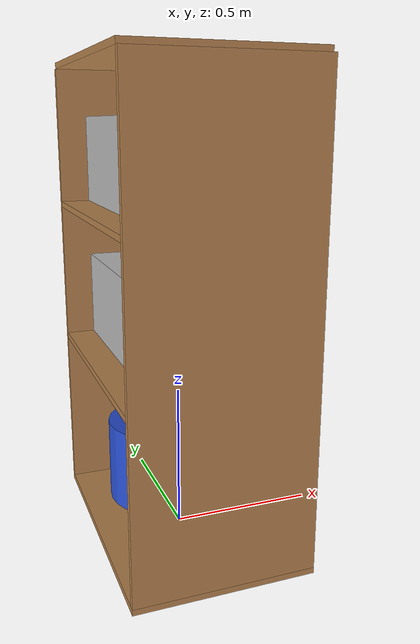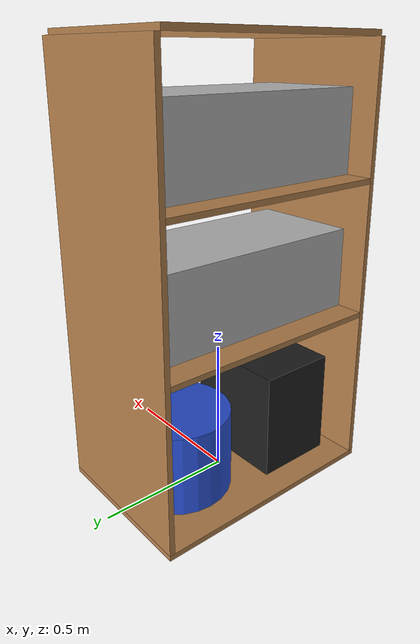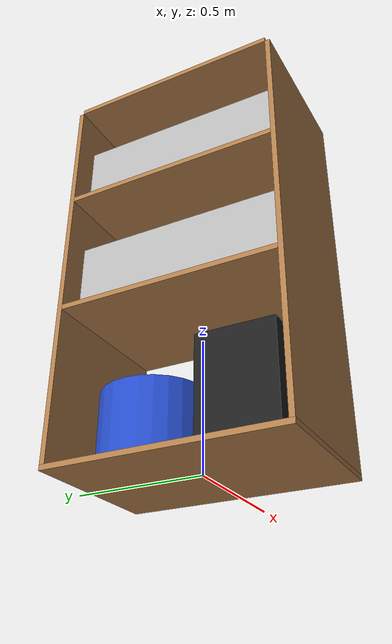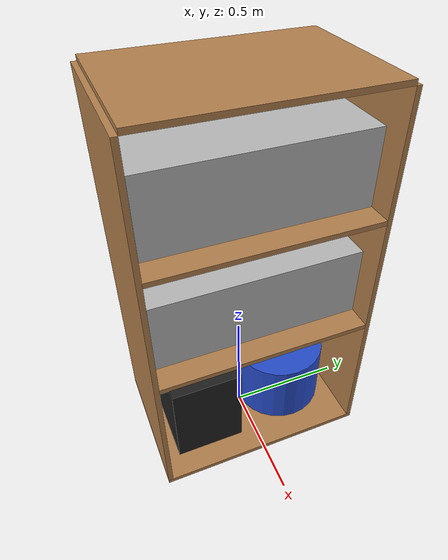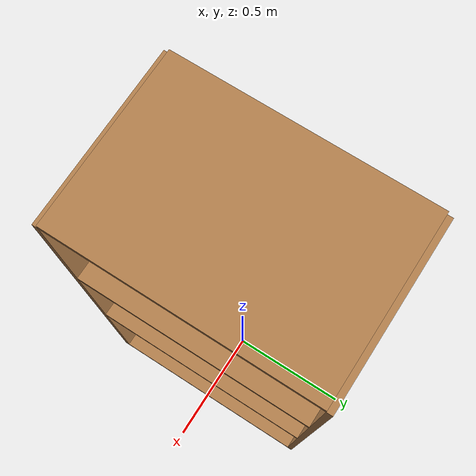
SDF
<?xml version='1.0'?>
<sdf version="1.4">
  <model name="env_wood_shelf">
    <link name="base">
      <inertial>
        <pose>0 0 0.8 0 0 0</pose>
        <mass>100.0</mass>
        <inertia>
          <ixx>33.4</ixx>
          <ixy>0.0</ixy>
          <ixz>0.0</ixz>
          <iyy>41.7</iyy>
          <iyz>0.0</iyz>
          <izz>8.42</izz>
        </inertia>
      </inertial>

      <collision name="collision_bottom">
        <pose>0 0 0.01 0 0 0</pose>
        <geometry>
          <box>
            <size>0.6 0.9 0.02</size>
          </box>
        </geometry>
      </collision>
      <visual name="visual_bottom">
        <pose>0 0 0.01 0 0 0</pose>
        <geometry>
          <box>
            <size>0.6 0.9 0.02</size>
          </box>
        </geometry>
        <material>
          <script>
            <uri>model://env_wood_shelf/materials/test_texture.material</uri>
            <name>WoodTecture1</name>
          </script>
        </material>
      </visual>

      <collision name="collision_middle1">
        <pose>0 0 0.61 0 0 0</pose>
        <geometry>
          <box>
            <size>0.6 0.86 0.02</size>
          </box>
        </geometry>
      </collision>
      <visual name="visual_middle1">
        <pose>0 0 0.61 0 0 0</pose>
        <geometry>
          <box>
            <size>0.6 0.86 0.02</size>
          </box>
        </geometry>
        <material>
          <script>
            <uri>model://env_wood_shelf/materials/test_texture.material</uri>
            <name>WoodTecture1</name>
          </script>
        </material>
      </visual>

      <collision name="collision_middle2">
        <pose>0 0 1.11 0 0 0</pose>
        <geometry>
          <box>
            <size>0.6 0.86 0.02</size>
          </box>
        </geometry>
      </collision>
      <visual name="visual_middle2">
        <pose>0 0 1.11 0 0 0</pose>
        <geometry>
          <box>
            <size>0.6 0.86 0.02</size>
          </box>
        </geometry>
        <material>
          <script>
            <uri>model://env_wood_shelf/materials/test_texture.material</uri>
            <name>WoodTecture1</name>
          </script>
        </material>
      </visual>

      <collision name="collision_top">
        <pose>0 0 1.59 0 0 0</pose>
        <geometry>
          <box>
            <size>0.6 0.86 0.02</size>
          </box>
        </geometry>
      </collision>
      <visual name="visual_top">
        <pose>0 0 1.59 0 0 0</pose>
        <geometry>
          <box>
            <size>0.6 0.86 0.02</size>
          </box>
        </geometry>
        <material>
          <script>
            <uri>model://env_wood_shelf/materials/test_texture.material</uri>
            <name>WoodTecture1</name>
          </script>
        </material>
      </visual>

      <collision name="collision_right">
        <pose>0 0.44 0.8 0 0 0</pose>
        <geometry>
          <box>
            <size>0.6 0.02 1.56</size>
          </box>
        </geometry>
      </collision>
      <visual name="visual_right">
        <pose>0 0.44 0.8 0 1.5707 0</pose>
        <geometry>
          <box>
            <size>1.56 0.02 0.6</size>
          </box>
        </geometry>
        <material>
          <script>
            <uri>model://env_wood_shelf/materials/test_texture.material</uri>
            <name>WoodTecture1</name>
          </script>
        </material>
      </visual>

      <collision name="collision_left">
        <pose>0 -0.44 0.8 0 0 0</pose>
        <geometry>
          <box>
            <size>0.6 0.02 1.56</size>
          </box>
        </geometry>
      </collision>
      <visual name="visual_left">
        <pose>0 -0.44 0.8 0 1.5707 0</pose>
        <geometry>
          <box>
            <size>1.56 0.02 0.6</size>
          </box>
        </geometry>
        <material>
          <script>
            <uri>model://env_wood_shelf/materials/test_texture.material</uri>
            <name>WoodTecture1</name>
          </script>
        </material>
      </visual>

      <collision name="collision_box">
        <pose>0 -0.22 0.22 0 0 0</pose>
        <geometry>
          <box>
            <size>0.4 0.3 0.4</size>
          </box>
        </geometry>
      </collision>
      <visual name="visual_box">
        <pose>0 -0.22 0.22 0 0 0</pose>
        <geometry>
          <box>
            <size>0.4 0.3 0.4</size>
          </box>
        </geometry>
        <material>
          <script>
            <uri>model://env_wood_shelf/materials/test_texture.material</uri>
            <name>PlasticBlackTexture</name>
          </script>
        </material>
      </visual>

      <collision name="collision_cylinder">
        <pose>0 0.20 0.17 0 0 0</pose>
        <geometry>
          <cylinder>
            <radius>0.2</radius>
            <length>0.3</length>
          </cylinder>
        </geometry>
      </collision>
      <visual name="visual_cylinder">
        <pose>0 0.20 0.17 0 0 0</pose>
        <geometry>
          <cylinder>
            <radius>0.2</radius>
            <length>0.3</length>
          </cylinder>
        </geometry>
        <material>
          <script>
            <uri>model://env_wood_shelf/materials/test_texture.material</uri>
            <name>PlasticBlueTexture</name>
          </script>
        </material>
      </visual>

      <collision name="collision_book1">
        <pose>0 0 0.77 0 0 0</pose>
        <geometry>
          <box>
            <size>0.4 0.86 0.3</size>
          </box>
        </geometry>
      </collision>
      <visual name="visual_books1">
        <pose>0 0 0.77 0 0 0</pose>
        <geometry>
          <box>
            <size>0.4 0.86 0.3</size>
          </box>
        </geometry>
        <material>
          <script>
            <uri>model://env_wood_shelf/materials/test_texture.material</uri>
            <name>Books1Texture</name>
          </script>
        </material>
      </visual>

      <collision name="collision_book2">
        <pose>0 0 1.27 0 0 0</pose>
        <geometry>
          <box>
            <size>0.4 0.86 0.3</size>
          </box>
        </geometry>
      </collision>
      <visual name="visual_books2">
        <pose>0 0 1.27 0 0 0</pose>
        <geometry>
          <box>
            <size>0.4 0.86 0.3</size>
          </box>
        </geometry>
        <material>
          <script>
            <uri>model://env_wood_shelf/materials/test_texture.material</uri>
            <name>Books2Texture</name>
          </script>
        </material>
      </visual>
    </link>

  </model>
</sdf>
